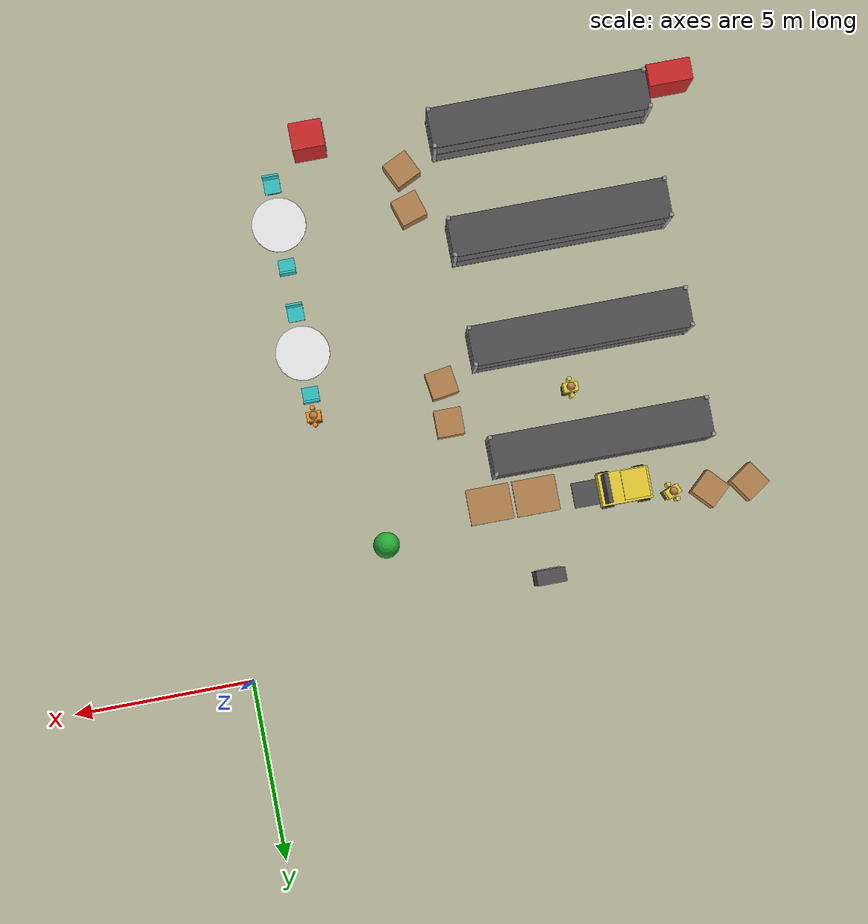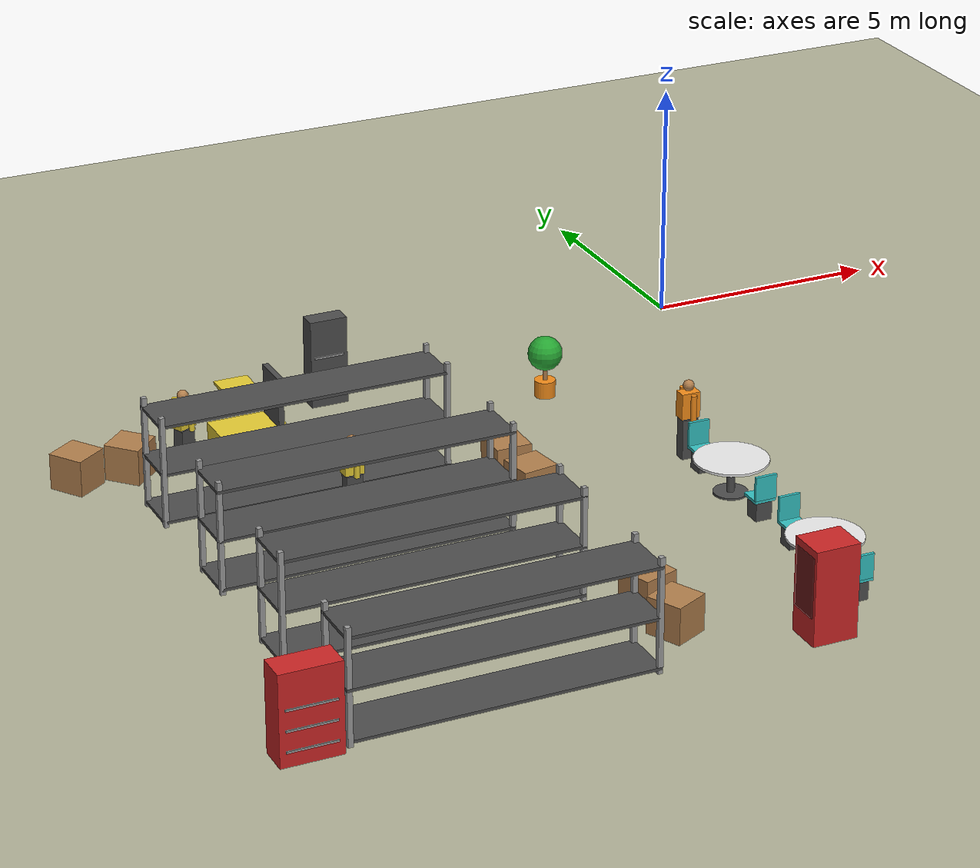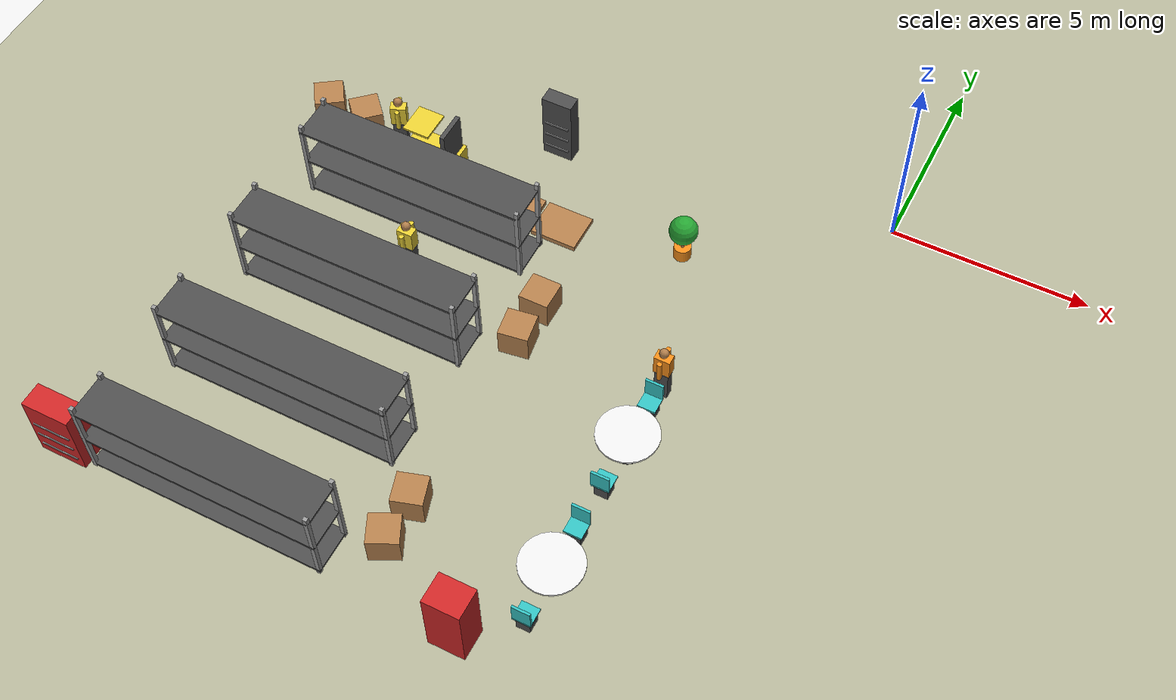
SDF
<sdf version="1.6">
 <world name="smart_building">
  <model name="ground_plane">
   <static>true</static>
   <link name="link">
    <collision name="collision">
     <geometry><plane><normal>0 0 1</normal><size>100 100</size></plane></geometry>
     <surface><friction><ode><mu>1.0</mu><mu2>1.0</mu2></ode></friction></surface>
    </collision>
    <visual name="visual">
     <geometry><plane><normal>0 0 1</normal><size>100 100</size></plane></geometry>
     <material>
      <script><uri>file://media/materials/scripts/gazebo.material</uri><name>Gazebo/Residential</name></script>
     </material>
    </visual>
   </link>
  </model>
  <model name="warehouse_rack_0">
   <static>true</static>
   <pose>-10.5000 -4.8000 0.0000 0.0000 0.0000 0.0000</pose>
   <link name="link_0">
    <pose>-2.9500 -0.5000 1.1500 0.0000 0.0000 0.0000</pose>
    <collision name="link_0_collision">
     <geometry><box><size>0.1000 0.1000 2.3000</size></box></geometry>
    </collision>
    <visual name="link_0_visual">
     <geometry><box><size>0.1000 0.1000 2.3000</size></box></geometry>
     <material>
      <script><uri>file://media/materials/scripts/gazebo.material</uri><name>Gazebo/Grey</name></script>
     </material>
    </visual>
   </link>
   <link name="link_1">
    <pose>-2.9500 0.5000 1.1500 0.0000 0.0000 0.0000</pose>
    <collision name="link_1_collision">
     <geometry><box><size>0.1000 0.1000 2.3000</size></box></geometry>
    </collision>
    <visual name="link_1_visual">
     <geometry><box><size>0.1000 0.1000 2.3000</size></box></geometry>
     <material>
      <script><uri>file://media/materials/scripts/gazebo.material</uri><name>Gazebo/Grey</name></script>
     </material>
    </visual>
   </link>
   <link name="link_2">
    <pose>2.9500 -0.5000 1.1500 0.0000 0.0000 0.0000</pose>
    <collision name="link_2_collision">
     <geometry><box><size>0.1000 0.1000 2.3000</size></box></geometry>
    </collision>
    <visual name="link_2_visual">
     <geometry><box><size>0.1000 0.1000 2.3000</size></box></geometry>
     <material>
      <script><uri>file://media/materials/scripts/gazebo.material</uri><name>Gazebo/Grey</name></script>
     </material>
    </visual>
   </link>
   <link name="link_3">
    <pose>2.9500 0.5000 1.1500 0.0000 0.0000 0.0000</pose>
    <collision name="link_3_collision">
     <geometry><box><size>0.1000 0.1000 2.3000</size></box></geometry>
    </collision>
    <visual name="link_3_visual">
     <geometry><box><size>0.1000 0.1000 2.3000</size></box></geometry>
     <material>
      <script><uri>file://media/materials/scripts/gazebo.material</uri><name>Gazebo/Grey</name></script>
     </material>
    </visual>
   </link>
   <link name="link_4">
    <pose>0.0000 0.0000 0.1000 0.0000 0.0000 0.0000</pose>
    <collision name="link_4_collision">
     <geometry><box><size>6.0000 1.1000 0.0600</size></box></geometry>
    </collision>
    <visual name="link_4_visual">
     <geometry><box><size>6.0000 1.1000 0.0600</size></box></geometry>
     <material>
      <script><uri>file://media/materials/scripts/gazebo.material</uri><name>Gazebo/DarkGrey</name></script>
     </material>
    </visual>
   </link>
   <link name="link_5">
    <pose>0.0000 0.0000 1.1000 0.0000 0.0000 0.0000</pose>
    <collision name="link_5_collision">
     <geometry><box><size>6.0000 1.1000 0.0600</size></box></geometry>
    </collision>
    <visual name="link_5_visual">
     <geometry><box><size>6.0000 1.1000 0.0600</size></box></geometry>
     <material>
      <script><uri>file://media/materials/scripts/gazebo.material</uri><name>Gazebo/DarkGrey</name></script>
     </material>
    </visual>
   </link>
   <link name="link_6">
    <pose>0.0000 0.0000 2.1000 0.0000 0.0000 0.0000</pose>
    <collision name="link_6_collision">
     <geometry><box><size>6.0000 1.1000 0.0600</size></box></geometry>
    </collision>
    <visual name="link_6_visual">
     <geometry><box><size>6.0000 1.1000 0.0600</size></box></geometry>
     <material>
      <script><uri>file://media/materials/scripts/gazebo.material</uri><name>Gazebo/DarkGrey</name></script>
     </material>
    </visual>
   </link>
  </model>
  <model name="warehouse_rack_1">
   <static>true</static>
   <pose>-10.5000 -7.8000 0.0000 0.0000 0.0000 0.0000</pose>
   <link name="link_0">
    <pose>-2.9500 -0.5000 1.1500 0.0000 0.0000 0.0000</pose>
    <collision name="link_0_collision">
     <geometry><box><size>0.1000 0.1000 2.3000</size></box></geometry>
    </collision>
    <visual name="link_0_visual">
     <geometry><box><size>0.1000 0.1000 2.3000</size></box></geometry>
     <material>
      <script><uri>file://media/materials/scripts/gazebo.material</uri><name>Gazebo/Grey</name></script>
     </material>
    </visual>
   </link>
   <link name="link_1">
    <pose>-2.9500 0.5000 1.1500 0.0000 0.0000 0.0000</pose>
    <collision name="link_1_collision">
     <geometry><box><size>0.1000 0.1000 2.3000</size></box></geometry>
    </collision>
    <visual name="link_1_visual">
     <geometry><box><size>0.1000 0.1000 2.3000</size></box></geometry>
     <material>
      <script><uri>file://media/materials/scripts/gazebo.material</uri><name>Gazebo/Grey</name></script>
     </material>
    </visual>
   </link>
   <link name="link_2">
    <pose>2.9500 -0.5000 1.1500 0.0000 0.0000 0.0000</pose>
    <collision name="link_2_collision">
     <geometry><box><size>0.1000 0.1000 2.3000</size></box></geometry>
    </collision>
    <visual name="link_2_visual">
     <geometry><box><size>0.1000 0.1000 2.3000</size></box></geometry>
     <material>
      <script><uri>file://media/materials/scripts/gazebo.material</uri><name>Gazebo/Grey</name></script>
     </material>
    </visual>
   </link>
   <link name="link_3">
    <pose>2.9500 0.5000 1.1500 0.0000 0.0000 0.0000</pose>
    <collision name="link_3_collision">
     <geometry><box><size>0.1000 0.1000 2.3000</size></box></geometry>
    </collision>
    <visual name="link_3_visual">
     <geometry><box><size>0.1000 0.1000 2.3000</size></box></geometry>
     <material>
      <script><uri>file://media/materials/scripts/gazebo.material</uri><name>Gazebo/Grey</name></script>
     </material>
    </visual>
   </link>
   <link name="link_4">
    <pose>0.0000 0.0000 0.1000 0.0000 0.0000 0.0000</pose>
    <collision name="link_4_collision">
     <geometry><box><size>6.0000 1.1000 0.0600</size></box></geometry>
    </collision>
    <visual name="link_4_visual">
     <geometry><box><size>6.0000 1.1000 0.0600</size></box></geometry>
     <material>
      <script><uri>file://media/materials/scripts/gazebo.material</uri><name>Gazebo/DarkGrey</name></script>
     </material>
    </visual>
   </link>
   <link name="link_5">
    <pose>0.0000 0.0000 1.1000 0.0000 0.0000 0.0000</pose>
    <collision name="link_5_collision">
     <geometry><box><size>6.0000 1.1000 0.0600</size></box></geometry>
    </collision>
    <visual name="link_5_visual">
     <geometry><box><size>6.0000 1.1000 0.0600</size></box></geometry>
     <material>
      <script><uri>file://media/materials/scripts/gazebo.material</uri><name>Gazebo/DarkGrey</name></script>
     </material>
    </visual>
   </link>
   <link name="link_6">
    <pose>0.0000 0.0000 2.1000 0.0000 0.0000 0.0000</pose>
    <collision name="link_6_collision">
     <geometry><box><size>6.0000 1.1000 0.0600</size></box></geometry>
    </collision>
    <visual name="link_6_visual">
     <geometry><box><size>6.0000 1.1000 0.0600</size></box></geometry>
     <material>
      <script><uri>file://media/materials/scripts/gazebo.material</uri><name>Gazebo/DarkGrey</name></script>
     </material>
    </visual>
   </link>
  </model>
  <model name="warehouse_rack_2">
   <static>true</static>
   <pose>-10.5000 -10.8000 0.0000 0.0000 0.0000 0.0000</pose>
   <link name="link_0">
    <pose>-2.9500 -0.5000 1.1500 0.0000 0.0000 0.0000</pose>
    <collision name="link_0_collision">
     <geometry><box><size>0.1000 0.1000 2.3000</size></box></geometry>
    </collision>
    <visual name="link_0_visual">
     <geometry><box><size>0.1000 0.1000 2.3000</size></box></geometry>
     <material>
      <script><uri>file://media/materials/scripts/gazebo.material</uri><name>Gazebo/Grey</name></script>
     </material>
    </visual>
   </link>
   <link name="link_1">
    <pose>-2.9500 0.5000 1.1500 0.0000 0.0000 0.0000</pose>
    <collision name="link_1_collision">
     <geometry><box><size>0.1000 0.1000 2.3000</size></box></geometry>
    </collision>
    <visual name="link_1_visual">
     <geometry><box><size>0.1000 0.1000 2.3000</size></box></geometry>
     <material>
      <script><uri>file://media/materials/scripts/gazebo.material</uri><name>Gazebo/Grey</name></script>
     </material>
    </visual>
   </link>
   <link name="link_2">
    <pose>2.9500 -0.5000 1.1500 0.0000 0.0000 0.0000</pose>
    <collision name="link_2_collision">
     <geometry><box><size>0.1000 0.1000 2.3000</size></box></geometry>
    </collision>
    <visual name="link_2_visual">
     <geometry><box><size>0.1000 0.1000 2.3000</size></box></geometry>
     <material>
      <script><uri>file://media/materials/scripts/gazebo.material</uri><name>Gazebo/Grey</name></script>
     </material>
    </visual>
   </link>
   <link name="link_3">
    <pose>2.9500 0.5000 1.1500 0.0000 0.0000 0.0000</pose>
    <collision name="link_3_collision">
     <geometry><box><size>0.1000 0.1000 2.3000</size></box></geometry>
    </collision>
    <visual name="link_3_visual">
     <geometry><box><size>0.1000 0.1000 2.3000</size></box></geometry>
     <material>
      <script><uri>file://media/materials/scripts/gazebo.material</uri><name>Gazebo/Grey</name></script>
     </material>
    </visual>
   </link>
   <link name="link_4">
    <pose>0.0000 0.0000 0.1000 0.0000 0.0000 0.0000</pose>
    <collision name="link_4_collision">
     <geometry><box><size>6.0000 1.1000 0.0600</size></box></geometry>
    </collision>
    <visual name="link_4_visual">
     <geometry><box><size>6.0000 1.1000 0.0600</size></box></geometry>
     <material>
      <script><uri>file://media/materials/scripts/gazebo.material</uri><name>Gazebo/DarkGrey</name></script>
     </material>
    </visual>
   </link>
   <link name="link_5">
    <pose>0.0000 0.0000 1.1000 0.0000 0.0000 0.0000</pose>
    <collision name="link_5_collision">
     <geometry><box><size>6.0000 1.1000 0.0600</size></box></geometry>
    </collision>
    <visual name="link_5_visual">
     <geometry><box><size>6.0000 1.1000 0.0600</size></box></geometry>
     <material>
      <script><uri>file://media/materials/scripts/gazebo.material</uri><name>Gazebo/DarkGrey</name></script>
     </material>
    </visual>
   </link>
   <link name="link_6">
    <pose>0.0000 0.0000 2.1000 0.0000 0.0000 0.0000</pose>
    <collision name="link_6_collision">
     <geometry><box><size>6.0000 1.1000 0.0600</size></box></geometry>
    </collision>
    <visual name="link_6_visual">
     <geometry><box><size>6.0000 1.1000 0.0600</size></box></geometry>
     <material>
      <script><uri>file://media/materials/scripts/gazebo.material</uri><name>Gazebo/DarkGrey</name></script>
     </material>
    </visual>
   </link>
  </model>
  <model name="warehouse_rack_3">
   <static>true</static>
   <pose>-10.5000 -13.8000 0.0000 0.0000 0.0000 0.0000</pose>
   <link name="link_0">
    <pose>-2.9500 -0.5000 1.1500 0.0000 0.0000 0.0000</pose>
    <collision name="link_0_collision">
     <geometry><box><size>0.1000 0.1000 2.3000</size></box></geometry>
    </collision>
    <visual name="link_0_visual">
     <geometry><box><size>0.1000 0.1000 2.3000</size></box></geometry>
     <material>
      <script><uri>file://media/materials/scripts/gazebo.material</uri><name>Gazebo/Grey</name></script>
     </material>
    </visual>
   </link>
   <link name="link_1">
    <pose>-2.9500 0.5000 1.1500 0.0000 0.0000 0.0000</pose>
    <collision name="link_1_collision">
     <geometry><box><size>0.1000 0.1000 2.3000</size></box></geometry>
    </collision>
    <visual name="link_1_visual">
     <geometry><box><size>0.1000 0.1000 2.3000</size></box></geometry>
     <material>
      <script><uri>file://media/materials/scripts/gazebo.material</uri><name>Gazebo/Grey</name></script>
     </material>
    </visual>
   </link>
   <link name="link_2">
    <pose>2.9500 -0.5000 1.1500 0.0000 0.0000 0.0000</pose>
    <collision name="link_2_collision">
     <geometry><box><size>0.1000 0.1000 2.3000</size></box></geometry>
    </collision>
    <visual name="link_2_visual">
     <geometry><box><size>0.1000 0.1000 2.3000</size></box></geometry>
     <material>
      <script><uri>file://media/materials/scripts/gazebo.material</uri><name>Gazebo/Grey</name></script>
     </material>
    </visual>
   </link>
   <link name="link_3">
    <pose>2.9500 0.5000 1.1500 0.0000 0.0000 0.0000</pose>
    <collision name="link_3_collision">
     <geometry><box><size>0.1000 0.1000 2.3000</size></box></geometry>
    </collision>
    <visual name="link_3_visual">
     <geometry><box><size>0.1000 0.1000 2.3000</size></box></geometry>
     <material>
      <script><uri>file://media/materials/scripts/gazebo.material</uri><name>Gazebo/Grey</name></script>
     </material>
    </visual>
   </link>
   <link name="link_4">
    <pose>0.0000 0.0000 0.1000 0.0000 0.0000 0.0000</pose>
    <collision name="link_4_collision">
     <geometry><box><size>6.0000 1.1000 0.0600</size></box></geometry>
    </collision>
    <visual name="link_4_visual">
     <geometry><box><size>6.0000 1.1000 0.0600</size></box></geometry>
     <material>
      <script><uri>file://media/materials/scripts/gazebo.material</uri><name>Gazebo/DarkGrey</name></script>
     </material>
    </visual>
   </link>
   <link name="link_5">
    <pose>0.0000 0.0000 1.1000 0.0000 0.0000 0.0000</pose>
    <collision name="link_5_collision">
     <geometry><box><size>6.0000 1.1000 0.0600</size></box></geometry>
    </collision>
    <visual name="link_5_visual">
     <geometry><box><size>6.0000 1.1000 0.0600</size></box></geometry>
     <material>
      <script><uri>file://media/materials/scripts/gazebo.material</uri><name>Gazebo/DarkGrey</name></script>
     </material>
    </visual>
   </link>
   <link name="link_6">
    <pose>0.0000 0.0000 2.1000 0.0000 0.0000 0.0000</pose>
    <collision name="link_6_collision">
     <geometry><box><size>6.0000 1.1000 0.0600</size></box></geometry>
    </collision>
    <visual name="link_6_visual">
     <geometry><box><size>6.0000 1.1000 0.0600</size></box></geometry>
     <material>
      <script><uri>file://media/materials/scripts/gazebo.material</uri><name>Gazebo/DarkGrey</name></script>
     </material>
    </visual>
   </link>
  </model>
  <model name="warehouse_crate_0">
   <static>true</static>
   <pose>-6.6000 -6.0000 0.0000 0.0000 0.0000 0.0000</pose>
   <link name="link_0">
    <pose>0.0000 0.0000 0.3750 0.0000 0.0000 0.0000</pose>
    <collision name="link_0_collision">
     <geometry><box><size>0.7500 0.7500 0.7500</size></box></geometry>
    </collision>
    <visual name="link_0_visual">
     <geometry><box><size>0.7500 0.7500 0.7500</size></box></geometry>
     <material>
      <script><uri>file://media/materials/scripts/gazebo.material</uri><name>Gazebo/WoodPallet</name></script>
     </material>
    </visual>
   </link>
  </model>
  <model name="warehouse_crate_1">
   <static>true</static>
   <pose>-6.6000 -7.1000 0.0000 0.0000 0.0000 0.1500</pose>
   <link name="link_0">
    <pose>0.0000 0.0000 0.3750 0.0000 0.0000 0.0000</pose>
    <collision name="link_0_collision">
     <geometry><box><size>0.7500 0.7500 0.7500</size></box></geometry>
    </collision>
    <visual name="link_0_visual">
     <geometry><box><size>0.7500 0.7500 0.7500</size></box></geometry>
     <material>
      <script><uri>file://media/materials/scripts/gazebo.material</uri><name>Gazebo/WoodPallet</name></script>
     </material>
    </visual>
   </link>
  </model>
  <model name="warehouse_crate_2">
   <static>true</static>
   <pose>-6.6000 -12.0000 0.0000 0.0000 0.0000 0.3000</pose>
   <link name="link_0">
    <pose>0.0000 0.0000 0.3750 0.0000 0.0000 0.0000</pose>
    <collision name="link_0_collision">
     <geometry><box><size>0.7500 0.7500 0.7500</size></box></geometry>
    </collision>
    <visual name="link_0_visual">
     <geometry><box><size>0.7500 0.7500 0.7500</size></box></geometry>
     <material>
      <script><uri>file://media/materials/scripts/gazebo.material</uri><name>Gazebo/WoodPallet</name></script>
     </material>
    </visual>
   </link>
  </model>
  <model name="warehouse_crate_3">
   <static>true</static>
   <pose>-6.6000 -13.1000 0.0000 0.0000 0.0000 0.4500</pose>
   <link name="link_0">
    <pose>0.0000 0.0000 0.3750 0.0000 0.0000 0.0000</pose>
    <collision name="link_0_collision">
     <geometry><box><size>0.7500 0.7500 0.7500</size></box></geometry>
    </collision>
    <visual name="link_0_visual">
     <geometry><box><size>0.7500 0.7500 0.7500</size></box></geometry>
     <material>
      <script><uri>file://media/materials/scripts/gazebo.material</uri><name>Gazebo/WoodPallet</name></script>
     </material>
    </visual>
   </link>
  </model>
  <model name="warehouse_crate_4">
   <static>true</static>
   <pose>-14.4000 -2.9000 0.0000 0.0000 0.0000 0.6000</pose>
   <link name="link_0">
    <pose>0.0000 0.0000 0.3750 0.0000 0.0000 0.0000</pose>
    <collision name="link_0_collision">
     <geometry><box><size>0.7500 0.7500 0.7500</size></box></geometry>
    </collision>
    <visual name="link_0_visual">
     <geometry><box><size>0.7500 0.7500 0.7500</size></box></geometry>
     <material>
      <script><uri>file://media/materials/scripts/gazebo.material</uri><name>Gazebo/WoodPallet</name></script>
     </material>
    </visual>
   </link>
  </model>
  <model name="warehouse_crate_5">
   <static>true</static>
   <pose>-13.3000 -2.9000 0.0000 0.0000 0.0000 0.7500</pose>
   <link name="link_0">
    <pose>0.0000 0.0000 0.3750 0.0000 0.0000 0.0000</pose>
    <collision name="link_0_collision">
     <geometry><box><size>0.7500 0.7500 0.7500</size></box></geometry>
    </collision>
    <visual name="link_0_visual">
     <geometry><box><size>0.7500 0.7500 0.7500</size></box></geometry>
     <material>
      <script><uri>file://media/materials/scripts/gazebo.material</uri><name>Gazebo/WoodPallet</name></script>
     </material>
    </visual>
   </link>
  </model>
  <model name="warehouse_pallet_0">
   <static>true</static>
   <pose>-8.6000 -3.6000 0.0000 0.0000 0.0000 0.0000</pose>
   <link name="link_0">
    <pose>0.0000 0.0000 0.0700 0.0000 0.0000 0.0000</pose>
    <collision name="link_0_collision">
     <geometry><box><size>1.2000 1.0000 0.1400</size></box></geometry>
    </collision>
    <visual name="link_0_visual">
     <geometry><box><size>1.2000 1.0000 0.1400</size></box></geometry>
     <material>
      <script><uri>file://media/materials/scripts/gazebo.material</uri><name>Gazebo/WoodPallet</name></script>
     </material>
    </visual>
   </link>
  </model>
  <model name="warehouse_pallet_1">
   <static>true</static>
   <pose>-7.3000 -3.6000 0.0000 0.0000 0.0000 0.0000</pose>
   <link name="link_0">
    <pose>0.0000 0.0000 0.0700 0.0000 0.0000 0.0000</pose>
    <collision name="link_0_collision">
     <geometry><box><size>1.2000 1.0000 0.1400</size></box></geometry>
    </collision>
    <visual name="link_0_visual">
     <geometry><box><size>1.2000 1.0000 0.1400</size></box></geometry>
     <material>
      <script><uri>file://media/materials/scripts/gazebo.material</uri><name>Gazebo/WoodPallet</name></script>
     </material>
    </visual>
   </link>
  </model>
  <model name="warehouse_forklift">
   <static>true</static>
   <pose>-11.0000 -3.4000 0.0000 0.0000 0.0000 0.0000</pose>
   <link name="link_0">
    <pose>0.0000 0.0000 0.4500 0.0000 0.0000 0.0000</pose>
    <collision name="link_0_collision">
     <geometry><box><size>1.4000 0.9000 0.8000</size></box></geometry>
    </collision>
    <visual name="link_0_visual">
     <geometry><box><size>1.4000 0.9000 0.8000</size></box></geometry>
     <material>
      <script><uri>file://media/materials/scripts/gazebo.material</uri><name>Gazebo/ZincYellow</name></script>
     </material>
    </visual>
   </link>
   <link name="link_1">
    <pose>0.9500 0.0000 0.1000 0.0000 0.0000 0.0000</pose>
    <collision name="link_1_collision">
     <geometry><box><size>0.9000 0.7000 0.0600</size></box></geometry>
    </collision>
    <visual name="link_1_visual">
     <geometry><box><size>0.9000 0.7000 0.0600</size></box></geometry>
     <material>
      <script><uri>file://media/materials/scripts/gazebo.material</uri><name>Gazebo/DarkGrey</name></script>
     </material>
    </visual>
   </link>
   <link name="link_2">
    <pose>0.5500 0.0000 0.9500 0.0000 0.0000 0.0000</pose>
    <collision name="link_2_collision">
     <geometry><box><size>0.1200 0.8000 1.9000</size></box></geometry>
    </collision>
    <visual name="link_2_visual">
     <geometry><box><size>0.1200 0.8000 1.9000</size></box></geometry>
     <material>
      <script><uri>file://media/materials/scripts/gazebo.material</uri><name>Gazebo/DarkGrey</name></script>
     </material>
    </visual>
   </link>
   <link name="link_3">
    <pose>-0.2000 0.0000 1.7000 0.0000 0.0000 0.0000</pose>
    <collision name="link_3_collision">
     <geometry><box><size>0.7000 0.8000 0.0600</size></box></geometry>
    </collision>
    <visual name="link_3_visual">
     <geometry><box><size>0.7000 0.8000 0.0600</size></box></geometry>
     <material>
      <script><uri>file://media/materials/scripts/gazebo.material</uri><name>Gazebo/ZincYellow</name></script>
     </material>
    </visual>
   </link>
   <link name="link_4">
    <pose>-0.5000 -0.4200 0.1800 1.5708 0.0000 0.0000</pose>
    <collision name="link_4_collision">
     <geometry><cylinder><radius>0.1800</radius><length>0.1600</length></cylinder></geometry>
    </collision>
    <visual name="link_4_visual">
     <geometry><cylinder><radius>0.1800</radius><length>0.1600</length></cylinder></geometry>
     <material>
      <script><uri>file://media/materials/scripts/gazebo.material</uri><name>Gazebo/FlatBlack</name></script>
     </material>
    </visual>
   </link>
   <link name="link_5">
    <pose>-0.5000 0.4200 0.1800 1.5708 0.0000 0.0000</pose>
    <collision name="link_5_collision">
     <geometry><cylinder><radius>0.1800</radius><length>0.1600</length></cylinder></geometry>
    </collision>
    <visual name="link_5_visual">
     <geometry><cylinder><radius>0.1800</radius><length>0.1600</length></cylinder></geometry>
     <material>
      <script><uri>file://media/materials/scripts/gazebo.material</uri><name>Gazebo/FlatBlack</name></script>
     </material>
    </visual>
   </link>
   <link name="link_6">
    <pose>0.5000 -0.4200 0.1800 1.5708 0.0000 0.0000</pose>
    <collision name="link_6_collision">
     <geometry><cylinder><radius>0.1800</radius><length>0.1600</length></cylinder></geometry>
    </collision>
    <visual name="link_6_visual">
     <geometry><cylinder><radius>0.1800</radius><length>0.1600</length></cylinder></geometry>
     <material>
      <script><uri>file://media/materials/scripts/gazebo.material</uri><name>Gazebo/FlatBlack</name></script>
     </material>
    </visual>
   </link>
   <link name="link_7">
    <pose>0.5000 0.4200 0.1800 1.5708 0.0000 0.0000</pose>
    <collision name="link_7_collision">
     <geometry><cylinder><radius>0.1800</radius><length>0.1600</length></cylinder></geometry>
    </collision>
    <visual name="link_7_visual">
     <geometry><cylinder><radius>0.1800</radius><length>0.1600</length></cylinder></geometry>
     <material>
      <script><uri>file://media/materials/scripts/gazebo.material</uri><name>Gazebo/FlatBlack</name></script>
     </material>
    </visual>
   </link>
  </model>
  <model name="person_warehouse_a">
   <static>true</static>
   <pose>-12.2000 -3.0000 0.0000 0.0000 0.0000 0.4000</pose>
   <link name="link_0">
    <pose>0.0000 0.0000 0.4250 0.0000 0.0000 0.0000</pose>
    <collision name="link_0_collision">
     <geometry><box><size>0.3400 0.2400 0.8500</size></box></geometry>
    </collision>
    <visual name="link_0_visual">
     <geometry><box><size>0.3400 0.2400 0.8500</size></box></geometry>
     <material>
      <script><uri>file://media/materials/scripts/gazebo.material</uri><name>Gazebo/DarkGrey</name></script>
     </material>
    </visual>
   </link>
   <link name="link_1">
    <pose>0.0000 0.0000 1.1500 0.0000 0.0000 0.0000</pose>
    <collision name="link_1_collision">
     <geometry><box><size>0.4000 0.2600 0.5500</size></box></geometry>
    </collision>
    <visual name="link_1_visual">
     <geometry><box><size>0.4000 0.2600 0.5500</size></box></geometry>
     <material>
      <script><uri>file://media/materials/scripts/gazebo.material</uri><name>Gazebo/ZincYellow</name></script>
     </material>
    </visual>
   </link>
   <link name="link_2">
    <pose>0.0000 0.2300 1.1500 0.0000 0.0000 0.0000</pose>
    <collision name="link_2_collision">
     <geometry><cylinder><radius>0.0600</radius><length>0.5500</length></cylinder></geometry>
    </collision>
    <visual name="link_2_visual">
     <geometry><cylinder><radius>0.0600</radius><length>0.5500</length></cylinder></geometry>
     <material>
      <script><uri>file://media/materials/scripts/gazebo.material</uri><name>Gazebo/ZincYellow</name></script>
     </material>
    </visual>
   </link>
   <link name="link_3">
    <pose>0.0000 -0.2300 1.1500 0.0000 0.0000 0.0000</pose>
    <collision name="link_3_collision">
     <geometry><cylinder><radius>0.0600</radius><length>0.5500</length></cylinder></geometry>
    </collision>
    <visual name="link_3_visual">
     <geometry><cylinder><radius>0.0600</radius><length>0.5500</length></cylinder></geometry>
     <material>
      <script><uri>file://media/materials/scripts/gazebo.material</uri><name>Gazebo/ZincYellow</name></script>
     </material>
    </visual>
   </link>
   <link name="link_4">
    <pose>0.0000 0.0000 1.5500 0.0000 0.0000 0.0000</pose>
    <collision name="link_4_collision"><geometry><sphere><radius>0.1150</radius></sphere></geometry></collision>
    <visual name="link_4_visual">
     <geometry><sphere><radius>0.1150</radius></sphere></geometry>
     <material>
      <script><uri>file://media/materials/scripts/gazebo.material</uri><name>Gazebo/Wood</name></script>
     </material>
    </visual>
   </link>
  </model>
  <model name="person_warehouse_b">
   <static>true</static>
   <pose>-10.0000 -6.3000 0.0000 0.0000 0.0000 3.1416</pose>
   <link name="link_0">
    <pose>0.0000 0.0000 0.4250 0.0000 0.0000 0.0000</pose>
    <collision name="link_0_collision">
     <geometry><box><size>0.3400 0.2400 0.8500</size></box></geometry>
    </collision>
    <visual name="link_0_visual">
     <geometry><box><size>0.3400 0.2400 0.8500</size></box></geometry>
     <material>
      <script><uri>file://media/materials/scripts/gazebo.material</uri><name>Gazebo/DarkGrey</name></script>
     </material>
    </visual>
   </link>
   <link name="link_1">
    <pose>0.0000 0.0000 1.1500 0.0000 0.0000 0.0000</pose>
    <collision name="link_1_collision">
     <geometry><box><size>0.4000 0.2600 0.5500</size></box></geometry>
    </collision>
    <visual name="link_1_visual">
     <geometry><box><size>0.4000 0.2600 0.5500</size></box></geometry>
     <material>
      <script><uri>file://media/materials/scripts/gazebo.material</uri><name>Gazebo/ZincYellow</name></script>
     </material>
    </visual>
   </link>
   <link name="link_2">
    <pose>0.0000 0.2300 1.1500 0.0000 0.0000 0.0000</pose>
    <collision name="link_2_collision">
     <geometry><cylinder><radius>0.0600</radius><length>0.5500</length></cylinder></geometry>
    </collision>
    <visual name="link_2_visual">
     <geometry><cylinder><radius>0.0600</radius><length>0.5500</length></cylinder></geometry>
     <material>
      <script><uri>file://media/materials/scripts/gazebo.material</uri><name>Gazebo/ZincYellow</name></script>
     </material>
    </visual>
   </link>
   <link name="link_3">
    <pose>0.0000 -0.2300 1.1500 0.0000 0.0000 0.0000</pose>
    <collision name="link_3_collision">
     <geometry><cylinder><radius>0.0600</radius><length>0.5500</length></cylinder></geometry>
    </collision>
    <visual name="link_3_visual">
     <geometry><cylinder><radius>0.0600</radius><length>0.5500</length></cylinder></geometry>
     <material>
      <script><uri>file://media/materials/scripts/gazebo.material</uri><name>Gazebo/ZincYellow</name></script>
     </material>
    </visual>
   </link>
   <link name="link_4">
    <pose>0.0000 0.0000 1.5500 0.0000 0.0000 0.0000</pose>
    <collision name="link_4_collision"><geometry><sphere><radius>0.1150</radius></sphere></geometry></collision>
    <visual name="link_4_visual">
     <geometry><sphere><radius>0.1150</radius></sphere></geometry>
     <material>
      <script><uri>file://media/materials/scripts/gazebo.material</uri><name>Gazebo/Wood</name></script>
     </material>
    </visual>
   </link>
  </model>
  <model name="warehouse_tool_cabinet">
   <static>true</static>
   <pose>-14.2000 -14.2000 0.0000 0.0000 0.0000 0.0000</pose>
   <link name="link_0">
    <pose>0.0000 0.0000 0.9000 0.0000 0.0000 0.0000</pose>
    <collision name="link_0_collision">
     <geometry><box><size>1.2000 0.6000 1.8000</size></box></geometry>
    </collision>
    <visual name="link_0_visual">
     <geometry><box><size>1.2000 0.6000 1.8000</size></box></geometry>
     <material>
      <script><uri>file://media/materials/scripts/gazebo.material</uri><name>Gazebo/RedBright</name></script>
     </material>
    </visual>
   </link>
   <link name="link_1">
    <pose>0.0000 -0.3100 0.3000 0.0000 0.0000 0.0000</pose>
    <visual name="link_1_visual">
     <geometry><box><size>0.9600 0.0300 0.0400</size></box></geometry>
     <material>
      <script><uri>file://media/materials/scripts/gazebo.material</uri><name>Gazebo/Grey</name></script>
     </material>
    </visual>
   </link>
   <link name="link_2">
    <pose>0.0000 -0.3100 0.7000 0.0000 0.0000 0.0000</pose>
    <visual name="link_2_visual">
     <geometry><box><size>0.9600 0.0300 0.0400</size></box></geometry>
     <material>
      <script><uri>file://media/materials/scripts/gazebo.material</uri><name>Gazebo/Grey</name></script>
     </material>
    </visual>
   </link>
   <link name="link_3">
    <pose>0.0000 -0.3100 1.1000 0.0000 0.0000 0.0000</pose>
    <visual name="link_3_visual">
     <geometry><box><size>0.9600 0.0300 0.0400</size></box></geometry>
     <material>
      <script><uri>file://media/materials/scripts/gazebo.material</uri><name>Gazebo/Grey</name></script>
     </material>
    </visual>
   </link>
  </model>
  <model name="cafe_table_3">
   <static>true</static>
   <pose>-3.0000 -8.6000 0.0000 0.0000 0.0000 0.0000</pose>
   <link name="link_0">
    <pose>0.0000 0.0000 0.7250 0.0000 0.0000 0.0000</pose>
    <collision name="link_0_collision">
     <geometry><cylinder><radius>0.7500</radius><length>0.0500</length></cylinder></geometry>
    </collision>
    <visual name="link_0_visual">
     <geometry><cylinder><radius>0.7500</radius><length>0.0500</length></cylinder></geometry>
     <material>
      <script><uri>file://media/materials/scripts/gazebo.material</uri><name>Gazebo/White</name></script>
     </material>
    </visual>
   </link>
   <link name="link_1">
    <pose>0.0000 0.0000 0.3500 0.0000 0.0000 0.0000</pose>
    <collision name="link_1_collision">
     <geometry><cylinder><radius>0.0800</radius><length>0.7000</length></cylinder></geometry>
    </collision>
    <visual name="link_1_visual">
     <geometry><cylinder><radius>0.0800</radius><length>0.7000</length></cylinder></geometry>
     <material>
      <script><uri>file://media/materials/scripts/gazebo.material</uri><name>Gazebo/DarkGrey</name></script>
     </material>
    </visual>
   </link>
   <link name="link_2">
    <pose>0.0000 0.0000 0.0200 0.0000 0.0000 0.0000</pose>
    <collision name="link_2_collision">
     <geometry><cylinder><radius>0.3500</radius><length>0.0400</length></cylinder></geometry>
    </collision>
    <visual name="link_2_visual">
     <geometry><cylinder><radius>0.3500</radius><length>0.0400</length></cylinder></geometry>
     <material>
      <script><uri>file://media/materials/scripts/gazebo.material</uri><name>Gazebo/DarkGrey</name></script>
     </material>
    </visual>
   </link>
  </model>
  <model name="cafe_chair_3_0">
   <static>true</static>
   <pose>-3.0000 -7.4500 0.0000 0.0000 0.0000 3.1416</pose>
   <link name="link_0">
    <pose>0.0000 0.0000 0.4400 0.0000 0.0000 0.0000</pose>
    <collision name="link_0_collision">
     <geometry><box><size>0.4500 0.4500 0.0600</size></box></geometry>
    </collision>
    <visual name="link_0_visual">
     <geometry><box><size>0.4500 0.4500 0.0600</size></box></geometry>
     <material>
      <script><uri>file://media/materials/scripts/gazebo.material</uri><name>Gazebo/Turquoise</name></script>
     </material>
    </visual>
   </link>
   <link name="link_1">
    <pose>0.0000 -0.2000 0.7200 0.0000 0.0000 0.0000</pose>
    <collision name="link_1_collision">
     <geometry><box><size>0.4500 0.0600 0.5000</size></box></geometry>
    </collision>
    <visual name="link_1_visual">
     <geometry><box><size>0.4500 0.0600 0.5000</size></box></geometry>
     <material>
      <script><uri>file://media/materials/scripts/gazebo.material</uri><name>Gazebo/Turquoise</name></script>
     </material>
    </visual>
   </link>
   <link name="link_2">
    <pose>0.0000 0.0000 0.2100 0.0000 0.0000 0.0000</pose>
    <collision name="link_2_collision">
     <geometry><box><size>0.3400 0.3400 0.4200</size></box></geometry>
    </collision>
    <visual name="link_2_visual">
     <geometry><box><size>0.3400 0.3400 0.4200</size></box></geometry>
     <material>
      <script><uri>file://media/materials/scripts/gazebo.material</uri><name>Gazebo/DarkGrey</name></script>
     </material>
    </visual>
   </link>
  </model>
  <model name="cafe_chair_3_1">
   <static>true</static>
   <pose>-3.0000 -9.7500 0.0000 0.0000 0.0000 0.0000</pose>
   <link name="link_0">
    <pose>0.0000 0.0000 0.4400 0.0000 0.0000 0.0000</pose>
    <collision name="link_0_collision">
     <geometry><box><size>0.4500 0.4500 0.0600</size></box></geometry>
    </collision>
    <visual name="link_0_visual">
     <geometry><box><size>0.4500 0.4500 0.0600</size></box></geometry>
     <material>
      <script><uri>file://media/materials/scripts/gazebo.material</uri><name>Gazebo/Turquoise</name></script>
     </material>
    </visual>
   </link>
   <link name="link_1">
    <pose>0.0000 -0.2000 0.7200 0.0000 0.0000 0.0000</pose>
    <collision name="link_1_collision">
     <geometry><box><size>0.4500 0.0600 0.5000</size></box></geometry>
    </collision>
    <visual name="link_1_visual">
     <geometry><box><size>0.4500 0.0600 0.5000</size></box></geometry>
     <material>
      <script><uri>file://media/materials/scripts/gazebo.material</uri><name>Gazebo/Turquoise</name></script>
     </material>
    </visual>
   </link>
   <link name="link_2">
    <pose>0.0000 0.0000 0.2100 0.0000 0.0000 0.0000</pose>
    <collision name="link_2_collision">
     <geometry><box><size>0.3400 0.3400 0.4200</size></box></geometry>
    </collision>
    <visual name="link_2_visual">
     <geometry><box><size>0.3400 0.3400 0.4200</size></box></geometry>
     <material>
      <script><uri>file://media/materials/scripts/gazebo.material</uri><name>Gazebo/DarkGrey</name></script>
     </material>
    </visual>
   </link>
  </model>
  <model name="cafe_table_6">
   <static>true</static>
   <pose>-3.0000 -12.2000 0.0000 0.0000 0.0000 0.0000</pose>
   <link name="link_0">
    <pose>0.0000 0.0000 0.7250 0.0000 0.0000 0.0000</pose>
    <collision name="link_0_collision">
     <geometry><cylinder><radius>0.7500</radius><length>0.0500</length></cylinder></geometry>
    </collision>
    <visual name="link_0_visual">
     <geometry><cylinder><radius>0.7500</radius><length>0.0500</length></cylinder></geometry>
     <material>
      <script><uri>file://media/materials/scripts/gazebo.material</uri><name>Gazebo/White</name></script>
     </material>
    </visual>
   </link>
   <link name="link_1">
    <pose>0.0000 0.0000 0.3500 0.0000 0.0000 0.0000</pose>
    <collision name="link_1_collision">
     <geometry><cylinder><radius>0.0800</radius><length>0.7000</length></cylinder></geometry>
    </collision>
    <visual name="link_1_visual">
     <geometry><cylinder><radius>0.0800</radius><length>0.7000</length></cylinder></geometry>
     <material>
      <script><uri>file://media/materials/scripts/gazebo.material</uri><name>Gazebo/DarkGrey</name></script>
     </material>
    </visual>
   </link>
   <link name="link_2">
    <pose>0.0000 0.0000 0.0200 0.0000 0.0000 0.0000</pose>
    <collision name="link_2_collision">
     <geometry><cylinder><radius>0.3500</radius><length>0.0400</length></cylinder></geometry>
    </collision>
    <visual name="link_2_visual">
     <geometry><cylinder><radius>0.3500</radius><length>0.0400</length></cylinder></geometry>
     <material>
      <script><uri>file://media/materials/scripts/gazebo.material</uri><name>Gazebo/DarkGrey</name></script>
     </material>
    </visual>
   </link>
  </model>
  <model name="cafe_chair_6_0">
   <static>true</static>
   <pose>-3.0000 -11.0500 0.0000 0.0000 0.0000 3.1416</pose>
   <link name="link_0">
    <pose>0.0000 0.0000 0.4400 0.0000 0.0000 0.0000</pose>
    <collision name="link_0_collision">
     <geometry><box><size>0.4500 0.4500 0.0600</size></box></geometry>
    </collision>
    <visual name="link_0_visual">
     <geometry><box><size>0.4500 0.4500 0.0600</size></box></geometry>
     <material>
      <script><uri>file://media/materials/scripts/gazebo.material</uri><name>Gazebo/Turquoise</name></script>
     </material>
    </visual>
   </link>
   <link name="link_1">
    <pose>0.0000 -0.2000 0.7200 0.0000 0.0000 0.0000</pose>
    <collision name="link_1_collision">
     <geometry><box><size>0.4500 0.0600 0.5000</size></box></geometry>
    </collision>
    <visual name="link_1_visual">
     <geometry><box><size>0.4500 0.0600 0.5000</size></box></geometry>
     <material>
      <script><uri>file://media/materials/scripts/gazebo.material</uri><name>Gazebo/Turquoise</name></script>
     </material>
    </visual>
   </link>
   <link name="link_2">
    <pose>0.0000 0.0000 0.2100 0.0000 0.0000 0.0000</pose>
    <collision name="link_2_collision">
     <geometry><box><size>0.3400 0.3400 0.4200</size></box></geometry>
    </collision>
    <visual name="link_2_visual">
     <geometry><box><size>0.3400 0.3400 0.4200</size></box></geometry>
     <material>
      <script><uri>file://media/materials/scripts/gazebo.material</uri><name>Gazebo/DarkGrey</name></script>
     </material>
    </visual>
   </link>
  </model>
  <model name="cafe_chair_6_1">
   <static>true</static>
   <pose>-3.0000 -13.3500 0.0000 0.0000 0.0000 0.0000</pose>
   <link name="link_0">
    <pose>0.0000 0.0000 0.4400 0.0000 0.0000 0.0000</pose>
    <collision name="link_0_collision">
     <geometry><box><size>0.4500 0.4500 0.0600</size></box></geometry>
    </collision>
    <visual name="link_0_visual">
     <geometry><box><size>0.4500 0.4500 0.0600</size></box></geometry>
     <material>
      <script><uri>file://media/materials/scripts/gazebo.material</uri><name>Gazebo/Turquoise</name></script>
     </material>
    </visual>
   </link>
   <link name="link_1">
    <pose>0.0000 -0.2000 0.7200 0.0000 0.0000 0.0000</pose>
    <collision name="link_1_collision">
     <geometry><box><size>0.4500 0.0600 0.5000</size></box></geometry>
    </collision>
    <visual name="link_1_visual">
     <geometry><box><size>0.4500 0.0600 0.5000</size></box></geometry>
     <material>
      <script><uri>file://media/materials/scripts/gazebo.material</uri><name>Gazebo/Turquoise</name></script>
     </material>
    </visual>
   </link>
   <link name="link_2">
    <pose>0.0000 0.0000 0.2100 0.0000 0.0000 0.0000</pose>
    <collision name="link_2_collision">
     <geometry><box><size>0.3400 0.3400 0.4200</size></box></geometry>
    </collision>
    <visual name="link_2_visual">
     <geometry><box><size>0.3400 0.3400 0.4200</size></box></geometry>
     <material>
      <script><uri>file://media/materials/scripts/gazebo.material</uri><name>Gazebo/DarkGrey</name></script>
     </material>
    </visual>
   </link>
  </model>
  <model name="cafe_vending_0">
   <static>true</static>
   <pose>-4.2000 -14.3000 0.0000 0.0000 0.0000 0.0000</pose>
   <link name="link_0">
    <pose>0.0000 0.0000 0.9500 0.0000 0.0000 0.0000</pose>
    <collision name="link_0_collision">
     <geometry><box><size>0.9000 0.7500 1.9000</size></box></geometry>
    </collision>
    <visual name="link_0_visual">
     <geometry><box><size>0.9000 0.7500 1.9000</size></box></geometry>
     <material>
      <script><uri>file://media/materials/scripts/gazebo.material</uri><name>Gazebo/Red</name></script>
     </material>
    </visual>
   </link>
   <link name="link_1">
    <pose>-0.4600 0.0000 1.1500 0.0000 0.0000 0.0000</pose>
    <visual name="link_1_visual">
     <geometry><box><size>0.0200 0.6000 1.2000</size></box></geometry>
     <material>
      <script><uri>file://media/materials/scripts/gazebo.material</uri><name>Gazebo/BlackTransparent</name></script>
     </material>
    </visual>
   </link>
  </model>
  <model name="person_cafe_1">
   <static>true</static>
   <pose>-3.0000 -6.8000 0.0000 0.0000 0.0000 3.1416</pose>
   <link name="link_0">
    <pose>0.0000 0.0000 0.4250 0.0000 0.0000 0.0000</pose>
    <collision name="link_0_collision">
     <geometry><box><size>0.3400 0.2400 0.8500</size></box></geometry>
    </collision>
    <visual name="link_0_visual">
     <geometry><box><size>0.3400 0.2400 0.8500</size></box></geometry>
     <material>
      <script><uri>file://media/materials/scripts/gazebo.material</uri><name>Gazebo/DarkGrey</name></script>
     </material>
    </visual>
   </link>
   <link name="link_1">
    <pose>0.0000 0.0000 1.1500 0.0000 0.0000 0.0000</pose>
    <collision name="link_1_collision">
     <geometry><box><size>0.4000 0.2600 0.5500</size></box></geometry>
    </collision>
    <visual name="link_1_visual">
     <geometry><box><size>0.4000 0.2600 0.5500</size></box></geometry>
     <material>
      <script><uri>file://media/materials/scripts/gazebo.material</uri><name>Gazebo/Orange</name></script>
     </material>
    </visual>
   </link>
   <link name="link_2">
    <pose>0.0000 0.2300 1.1500 0.0000 0.0000 0.0000</pose>
    <collision name="link_2_collision">
     <geometry><cylinder><radius>0.0600</radius><length>0.5500</length></cylinder></geometry>
    </collision>
    <visual name="link_2_visual">
     <geometry><cylinder><radius>0.0600</radius><length>0.5500</length></cylinder></geometry>
     <material>
      <script><uri>file://media/materials/scripts/gazebo.material</uri><name>Gazebo/Orange</name></script>
     </material>
    </visual>
   </link>
   <link name="link_3">
    <pose>0.0000 -0.2300 1.1500 0.0000 0.0000 0.0000</pose>
    <collision name="link_3_collision">
     <geometry><cylinder><radius>0.0600</radius><length>0.5500</length></cylinder></geometry>
    </collision>
    <visual name="link_3_visual">
     <geometry><cylinder><radius>0.0600</radius><length>0.5500</length></cylinder></geometry>
     <material>
      <script><uri>file://media/materials/scripts/gazebo.material</uri><name>Gazebo/Orange</name></script>
     </material>
    </visual>
   </link>
   <link name="link_4">
    <pose>0.0000 0.0000 1.5500 0.0000 0.0000 0.0000</pose>
    <collision name="link_4_collision"><geometry><sphere><radius>0.1150</radius></sphere></geometry></collision>
    <visual name="link_4_visual">
     <geometry><sphere><radius>0.1150</radius></sphere></geometry>
     <material>
      <script><uri>file://media/materials/scripts/gazebo.material</uri><name>Gazebo/Wood</name></script>
     </material>
    </visual>
   </link>
  </model>
  <model name="plant_cafe_a">
   <static>true</static>
   <pose>-4.3000 -3.0000 0.0000 0.0000 0.0000 0.0000</pose>
   <link name="link_0">
    <pose>0.0000 0.0000 0.1800 0.0000 0.0000 0.0000</pose>
    <collision name="link_0_collision">
     <geometry><cylinder><radius>0.2200</radius><length>0.3600</length></cylinder></geometry>
    </collision>
    <visual name="link_0_visual">
     <geometry><cylinder><radius>0.2200</radius><length>0.3600</length></cylinder></geometry>
     <material>
      <script><uri>file://media/materials/scripts/gazebo.material</uri><name>Gazebo/Orange</name></script>
     </material>
    </visual>
   </link>
   <link name="link_1">
    <pose>0.0000 0.0000 0.5000 0.0000 0.0000 0.0000</pose>
    <collision name="link_1_collision">
     <geometry><cylinder><radius>0.0500</radius><length>0.4000</length></cylinder></geometry>
    </collision>
    <visual name="link_1_visual">
     <geometry><cylinder><radius>0.0500</radius><length>0.4000</length></cylinder></geometry>
     <material>
      <script><uri>file://media/materials/scripts/gazebo.material</uri><name>Gazebo/Wood</name></script>
     </material>
    </visual>
   </link>
   <link name="link_2">
    <pose>0.0000 0.0000 0.9500 0.0000 0.0000 0.0000</pose>
    <collision name="link_2_collision"><geometry><sphere><radius>0.3600</radius></sphere></geometry></collision>
    <visual name="link_2_visual">
     <geometry><sphere><radius>0.3600</radius></sphere></geometry>
     <material>
      <script><uri>file://media/materials/scripts/gazebo.material</uri><name>Gazebo/Green</name></script>
     </material>
    </visual>
   </link>
  </model>
  <model name="corridor_locker">
   <static>true</static>
   <pose>-8.5000 -1.3500 0.0000 0.0000 0.0000 0.0000</pose>
   <link name="link_0">
    <pose>0.0000 0.0000 0.9500 0.0000 0.0000 0.0000</pose>
    <collision name="link_0_collision">
     <geometry><box><size>0.8000 0.4000 1.9000</size></box></geometry>
    </collision>
    <visual name="link_0_visual">
     <geometry><box><size>0.8000 0.4000 1.9000</size></box></geometry>
     <material>
      <script><uri>file://media/materials/scripts/gazebo.material</uri><name>Gazebo/DarkGrey</name></script>
     </material>
    </visual>
   </link>
   <link name="link_1">
    <pose>0.0000 -0.2100 0.3000 0.0000 0.0000 0.0000</pose>
    <visual name="link_1_visual">
     <geometry><box><size>0.6400 0.0300 0.0400</size></box></geometry>
     <material>
      <script><uri>file://media/materials/scripts/gazebo.material</uri><name>Gazebo/Grey</name></script>
     </material>
    </visual>
   </link>
   <link name="link_2">
    <pose>0.0000 -0.2100 0.7000 0.0000 0.0000 0.0000</pose>
    <visual name="link_2_visual">
     <geometry><box><size>0.6400 0.0300 0.0400</size></box></geometry>
     <material>
      <script><uri>file://media/materials/scripts/gazebo.material</uri><name>Gazebo/Grey</name></script>
     </material>
    </visual>
   </link>
   <link name="link_3">
    <pose>0.0000 -0.2100 1.1000 0.0000 0.0000 0.0000</pose>
    <visual name="link_3_visual">
     <geometry><box><size>0.6400 0.0300 0.0400</size></box></geometry>
     <material>
      <script><uri>file://media/materials/scripts/gazebo.material</uri><name>Gazebo/Grey</name></script>
     </material>
    </visual>
   </link>
  </model>
 </world>
</sdf>
